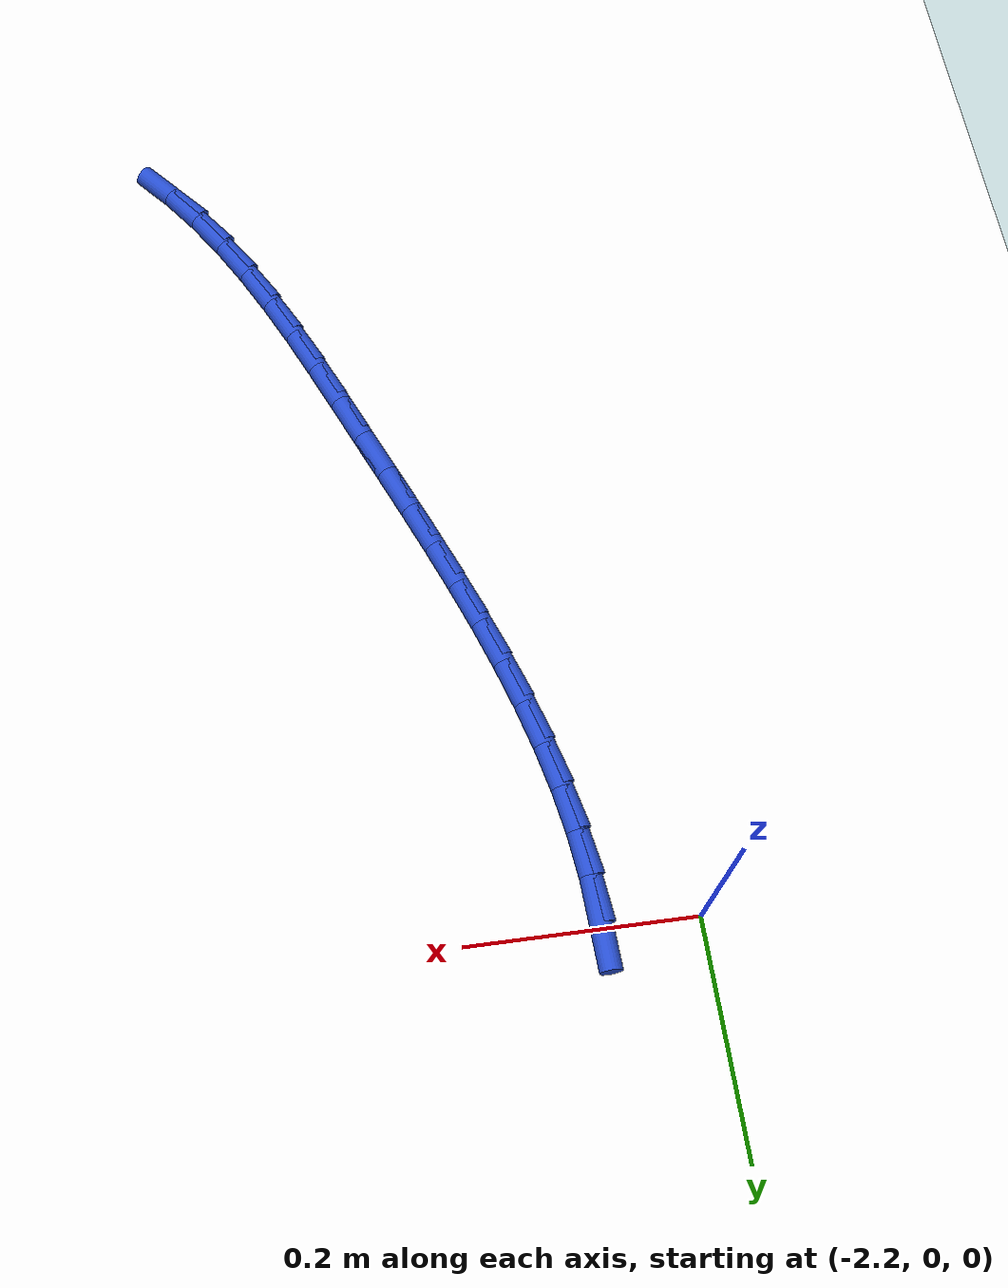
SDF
<sdf version="1.6">
 <world name="default">
  <model name="ground_plane">
   <static>1</static>
   <link name="link">
    <collision name="collision">
     <geometry><plane><normal>0 0 1</normal><size>100 100</size></plane></geometry>
     <surface><friction><ode><mu>100</mu><mu2>50</mu2></ode></friction></surface>
    </collision>
    <visual name="visual">
     <cast_shadows>0</cast_shadows>
     <geometry><plane><normal>0 0 1</normal><size>100 100</size></plane></geometry>
     <material>
      <script><uri>file://media/materials/scripts/gazebo.material</uri><name>Gazebo/WhiteGlow</name></script>
     </material>
    </visual>
   </link>
  </model>
  <model name="line">
   <link name="link_80">
    <pose>-2.115444968008097 -0.002043687227925963 0.01 0 1.57 -1.5384065185165545</pose>
    <collision name="collision">
     <geometry><cylinder><radius>0.01</radius><length>0.08</length></cylinder></geometry>
    </collision>
    <visual name="visual">
     <material>
      <script><name>Gazebo/Blue</name><uri>file://media/materials/scripts/gazebo.material</uri></script>
     </material>
     <geometry><cylinder><radius>0.01</radius><length>0.08</length></cylinder></geometry>
    </visual>
   </link>
   <link name="link_81">
    <pose>-2.11415810453712 -0.04176029846644008 0.01 0 1.57 -1.4696254007020295</pose>
    <collision name="collision">
     <geometry><cylinder><radius>0.01</radius><length>0.08</length></cylinder></geometry>
    </collision>
    <visual name="visual">
     <material>
      <script><name>Gazebo/Blue</name><uri>file://media/materials/scripts/gazebo.material</uri></script>
     </material>
     <geometry><cylinder><radius>0.01</radius><length>0.08</length></cylinder></geometry>
    </visual>
   </link>
   <link name="link_82">
    <pose>-2.1101005033658335 -0.08172976337581278 0.01 0 1.57 -1.4090426154863513</pose>
    <collision name="collision">
     <geometry><cylinder><radius>0.01</radius><length>0.08</length></cylinder></geometry>
    </collision>
    <visual name="visual">
     <material>
      <script><name>Gazebo/Blue</name><uri>file://media/materials/scripts/gazebo.material</uri></script>
     </material>
     <geometry><cylinder><radius>0.01</radius><length>0.08</length></cylinder></geometry>
    </visual>
   </link>
   <link name="link_83">
    <pose>-2.103543935108875 -0.12190989661753537 0.01 0 1.57 -1.3564439498817953</pose>
    <collision name="collision">
     <geometry><cylinder><radius>0.01</radius><length>0.08</length></cylinder></geometry>
    </collision>
    <visual name="visual">
     <material>
      <script><name>Gazebo/Blue</name><uri>file://media/materials/scripts/gazebo.material</uri></script>
     </material>
     <geometry><cylinder><radius>0.01</radius><length>0.08</length></cylinder></geometry>
    </visual>
   </link>
   <link name="link_84">
    <pose>-2.0947601703808822 -0.16225851285310147 0.01 0 1.57 -1.311442697950577</pose>
    <collision name="collision">
     <geometry><cylinder><radius>0.01</radius><length>0.08</length></cylinder></geometry>
    </collision>
    <visual name="visual">
     <material>
      <script><name>Gazebo/Blue</name><uri>file://media/materials/scripts/gazebo.material</uri></script>
     </material>
     <geometry><cylinder><radius>0.01</radius><length>0.08</length></cylinder></geometry>
    </visual>
   </link>
   <link name="link_85">
    <pose>-2.0840209797964926 -0.20273342674400385 0.01 0 1.57 -1.2735784377788513</pose>
    <collision name="collision">
     <geometry><cylinder><radius>0.01</radius><length>0.08</length></cylinder></geometry>
    </collision>
    <visual name="visual">
     <material>
      <script><name>Gazebo/Blue</name><uri>file://media/materials/scripts/gazebo.material</uri></script>
     </material>
     <geometry><cylinder><radius>0.01</radius><length>0.08</length></cylinder></geometry>
    </visual>
   </link>
   <link name="link_86">
    <pose>-2.071598133970342 -0.24329245295173527 0.01 0 1.57 -1.2423866683645894</pose>
    <collision name="collision">
     <geometry><cylinder><radius>0.01</radius><length>0.08</length></cylinder></geometry>
    </collision>
    <visual name="visual">
     <material>
      <script><name>Gazebo/Blue</name><uri>file://media/materials/scripts/gazebo.material</uri></script>
     </material>
     <geometry><cylinder><radius>0.01</radius><length>0.08</length></cylinder></geometry>
    </visual>
   </link>
   <link name="link_87">
    <pose>-2.057763403517069 -0.28389340613778924 0.01 0 1.57 -1.2174439581185321</pose>
    <collision name="collision">
     <geometry><cylinder><radius>0.01</radius><length>0.08</length></cylinder></geometry>
    </collision>
    <visual name="visual">
     <material>
      <script><name>Gazebo/Blue</name><uri>file://media/materials/scripts/gazebo.material</uri></script>
     </material>
     <geometry><cylinder><radius>0.01</radius><length>0.08</length></cylinder></geometry>
    </visual>
   </link>
   <link name="link_88">
    <pose>-2.0427885590513113 -0.32449410096365716 0.01 0 1.57 -1.1983952913517646</pose>
    <collision name="collision">
     <geometry><cylinder><radius>0.01</radius><length>0.08</length></cylinder></geometry>
    </collision>
    <visual name="visual">
     <material>
      <script><name>Gazebo/Blue</name><uri>file://media/materials/scripts/gazebo.material</uri></script>
     </material>
     <geometry><cylinder><radius>0.01</radius><length>0.08</length></cylinder></geometry>
    </visual>
   </link>
   <link name="link_89">
    <pose>-2.026945371187706 -0.36505235209083253 0.01 0 1.57 -1.1849698228149663</pose>
    <collision name="collision">
     <geometry><cylinder><radius>0.01</radius><length>0.08</length></cylinder></geometry>
    </collision>
    <visual name="visual">
     <material>
      <script><name>Gazebo/Blue</name><uri>file://media/materials/scripts/gazebo.material</uri></script>
     </material>
     <geometry><cylinder><radius>0.01</radius><length>0.08</length></cylinder></geometry>
    </visual>
   </link>
   <link name="link_90">
    <pose>-2.0105056105408896 -0.40552597418080816 0.01 0 1.57 -1.1769898899506765</pose>
    <collision name="collision">
     <geometry><cylinder><radius>0.01</radius><length>0.08</length></cylinder></geometry>
    </collision>
    <visual name="visual">
     <material>
      <script><name>Gazebo/Blue</name><uri>file://media/materials/scripts/gazebo.material</uri></script>
     </material>
     <geometry><cylinder><radius>0.01</radius><length>0.08</length></cylinder></geometry>
    </visual>
   </link>
   <link name="link_91">
    <pose>-1.9937410477255002 -0.44587278189507684 0.01 0 1.57 -1.1743767077478864</pose>
    <collision name="collision">
     <geometry><cylinder><radius>0.01</radius><length>0.08</length></cylinder></geometry>
    </collision>
    <visual name="visual">
     <material>
      <script><name>Gazebo/Blue</name><uri>file://media/materials/scripts/gazebo.material</uri></script>
     </material>
     <geometry><cylinder><radius>0.01</radius><length>0.08</length></cylinder></geometry>
    </visual>
   </link>
   <link name="link_92">
    <pose>-1.9769234533561755 -0.4860505898951321 0.01 0 1.57 -1.174927111624899</pose>
    <collision name="collision">
     <geometry><cylinder><radius>0.01</radius><length>0.08</length></cylinder></geometry>
    </collision>
    <visual name="visual">
     <material>
      <script><name>Gazebo/Blue</name><uri>file://media/materials/scripts/gazebo.material</uri></script>
     </material>
     <geometry><cylinder><radius>0.01</radius><length>0.08</length></cylinder></geometry>
    </visual>
   </link>
   <link name="link_93">
    <pose>-1.9602317733159054 -0.5259892881688595 0.01 0 1.57 -1.1691983159640413</pose>
    <collision name="collision">
     <geometry><cylinder><radius>0.01</radius><length>0.08</length></cylinder></geometry>
    </collision>
    <visual name="visual">
     <material>
      <script><name>Gazebo/Blue</name><uri>file://media/materials/scripts/gazebo.material</uri></script>
     </material>
     <geometry><cylinder><radius>0.01</radius><length>0.08</length></cylinder></geometry>
    </visual>
   </link>
   <link name="link_94">
    <pose>-1.9434521790949688 -0.5655006074967597 0.01 0 1.57 -1.1544616003926207</pose>
    <collision name="collision">
     <geometry><cylinder><radius>0.01</radius><length>0.08</length></cylinder></geometry>
    </collision>
    <visual name="visual">
     <material>
      <script><name>Gazebo/Blue</name><uri>file://media/materials/scripts/gazebo.material</uri></script>
     </material>
     <geometry><cylinder><radius>0.01</radius><length>0.08</length></cylinder></geometry>
    </visual>
   </link>
   <link name="link_95">
    <pose>-1.9262669727923587 -0.6043650313958304 0.01 0 1.57 -1.130370021978939</pose>
    <collision name="collision">
     <geometry><cylinder><radius>0.01</radius><length>0.08</length></cylinder></geometry>
    </collision>
    <visual name="visual">
     <material>
      <script><name>Gazebo/Blue</name><uri>file://media/materials/scripts/gazebo.material</uri></script>
     </material>
     <geometry><cylinder><radius>0.01</radius><length>0.08</length></cylinder></geometry>
    </visual>
   </link>
   <link name="link_96">
    <pose>-1.9083584558606137 -0.6423630431885964 0.01 0 1.57 -1.0965106591635845</pose>
    <collision name="collision">
     <geometry><cylinder><radius>0.01</radius><length>0.08</length></cylinder></geometry>
    </collision>
    <visual name="visual">
     <material>
      <script><name>Gazebo/Blue</name><uri>file://media/materials/scripts/gazebo.material</uri></script>
     </material>
     <geometry><cylinder><radius>0.01</radius><length>0.08</length></cylinder></geometry>
    </visual>
   </link>
   <link name="link_97">
    <pose>-1.8894089297522743 -0.6792751261975799 0.01 0 1.57 -1.0524639192613598</pose>
    <collision name="collision">
     <geometry><cylinder><radius>0.01</radius><length>0.08</length></cylinder></geometry>
    </collision>
    <visual name="visual">
     <material>
      <script><name>Gazebo/Blue</name><uri>file://media/materials/scripts/gazebo.material</uri></script>
     </material>
     <geometry><cylinder><radius>0.01</radius><length>0.08</length></cylinder></geometry>
    </visual>
   </link>
   <link name="link_98">
    <pose>-1.8691006959198797 -0.7148817637453054 0.01 0 1.57 -0.997903478348885</pose>
    <collision name="collision">
     <geometry><cylinder><radius>0.01</radius><length>0.08</length></cylinder></geometry>
    </collision>
    <visual name="visual">
     <material>
      <script><name>Gazebo/Blue</name><uri>file://media/materials/scripts/gazebo.material</uri></script>
     </material>
     <geometry><cylinder><radius>0.01</radius><length>0.08</length></cylinder></geometry>
    </visual>
   </link>
   <link name="link_99">
    <pose>-1.8471160558159703 -0.7489634391542972 0.01 0 1.57 -0.9327432102626161</pose>
    <collision name="collision">
     <geometry><cylinder><radius>0.01</radius><length>0.08</length></cylinder></geometry>
    </collision>
    <visual name="visual">
     <material>
      <script><name>Gazebo/Blue</name><uri>file://media/materials/scripts/gazebo.material</uri></script>
     </material>
     <geometry><cylinder><radius>0.01</radius><length>0.08</length></cylinder></geometry>
    </visual>
   </link>
   <link name="link_100">
    <pose>-1.8231373108930848 -0.7813006357470786 0.01 0 1.57 -0.8573727970487942</pose>
    <collision name="collision">
     <geometry><cylinder><radius>0.01</radius><length>0.08</length></cylinder></geometry>
    </collision>
    <visual name="visual">
     <material>
      <script><name>Gazebo/Blue</name><uri>file://media/materials/scripts/gazebo.material</uri></script>
     </material>
     <geometry><cylinder><radius>0.01</radius><length>0.08</length></cylinder></geometry>
    </visual>
   </link>
  </model>
 </world>
</sdf>
